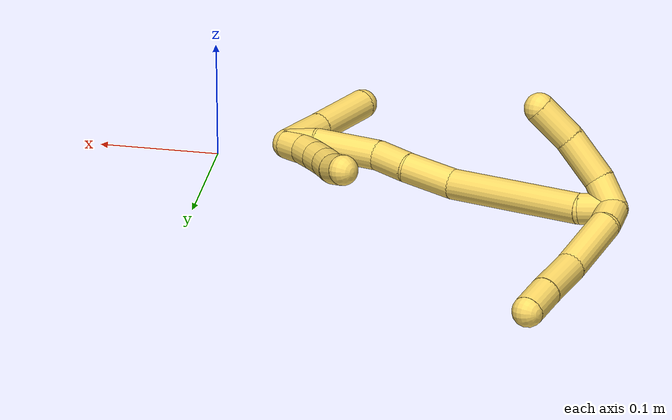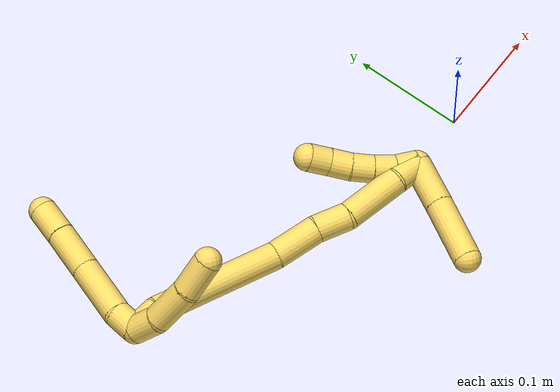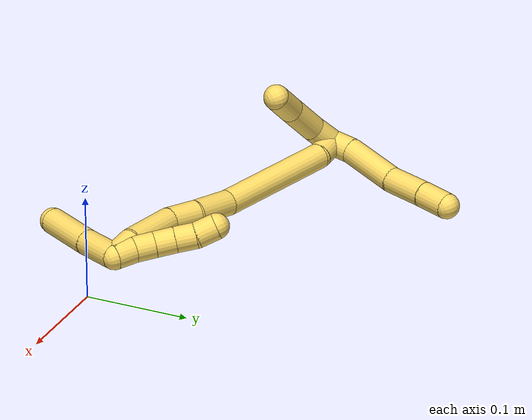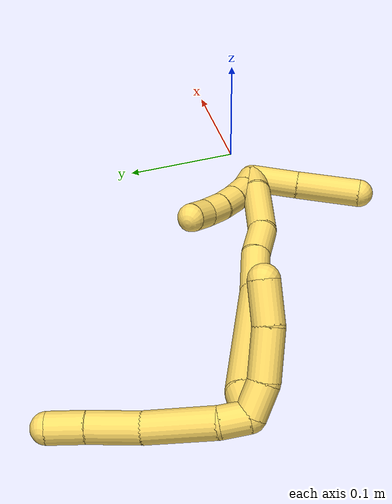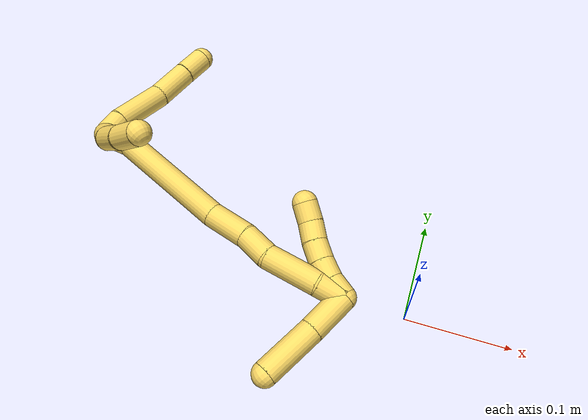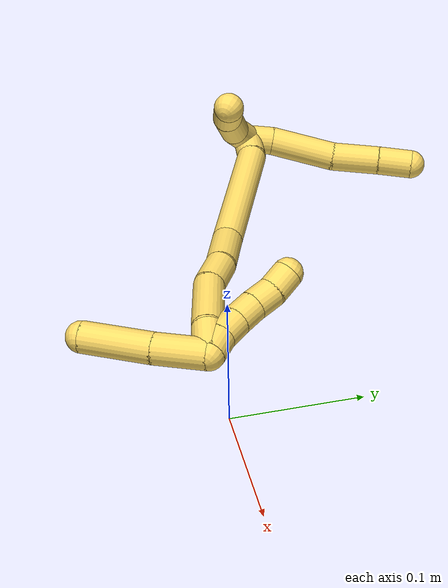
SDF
<sdf version="1.7">
 <world name="default">
  <model name="5">
   <static>0</static>
   <link name="5">
    <collision name="collision-cylinder-e_1_2_8">
     <pose>0.001507 0.010247 0.004462 -1.16008 0.13399 -0.087869</pose>
     <geometry><cylinder><radius>0.0125</radius><length>0.022556</length></cylinder></geometry>
     <surface>
      <friction><ode><mu>1.16</mu><mu2>1.16</mu2><slip1>0</slip1><slip2>0</slip2></ode></friction>
      <contact><ode><kp>1e+06</kp><kd>1</kd><max_vel>0</max_vel><min_depth>0.001</min_depth></ode></contact>
     </surface>
    </collision>
    <visual name="visual-cylinder-e_1_2_8">
     <pose>0.001507 0.010247 0.004462 -1.16008 0.13399 -0.087869</pose>
     <geometry><cylinder><radius>0.0125</radius><length>0.022556</length></cylinder></geometry>
     <material><ambient>1 0.858824 0.4 1</ambient></material>
    </visual>
    <collision name="collision-cylinder-e_2_8_9">
     <pose>0.006708 0.048263 0.013899 -1.39353 0.130227 -0.109017</pose>
     <geometry><cylinder><radius>0.0125</radius><length>0.056903</length></cylinder></geometry>
     <surface>
      <friction><ode><mu>1.16</mu><mu2>1.16</mu2><slip1>0</slip1><slip2>0</slip2></ode></friction>
      <contact><ode><kp>1e+06</kp><kd>1</kd><max_vel>0</max_vel><min_depth>0.001</min_depth></ode></contact>
     </surface>
    </collision>
    <visual name="visual-cylinder-e_2_8_9">
     <pose>0.006708 0.048263 0.013899 -1.39353 0.130227 -0.109017</pose>
     <geometry><cylinder><radius>0.0125</radius><length>0.056903</length></cylinder></geometry>
     <material><ambient>1 0.858824 0.4 1</ambient></material>
    </visual>
    <collision name="collision-cylinder-e_3_9_10">
     <pose>0.016138 0.095145 0.023923 -1.31253 0.282354 -0.21804</pose>
     <geometry><cylinder><radius>0.0125</radius><length>0.041169</length></cylinder></geometry>
     <surface>
      <friction><ode><mu>1.16</mu><mu2>1.16</mu2><slip1>0</slip1><slip2>0</slip2></ode></friction>
      <contact><ode><kp>1e+06</kp><kd>1</kd><max_vel>0</max_vel><min_depth>0.001</min_depth></ode></contact>
     </surface>
    </collision>
    <visual name="visual-cylinder-e_3_9_10">
     <pose>0.016138 0.095145 0.023923 -1.31253 0.282354 -0.21804</pose>
     <geometry><cylinder><radius>0.0125</radius><length>0.041169</length></cylinder></geometry>
     <material><ambient>1 0.858824 0.4 1</ambient></material>
    </visual>
    <collision name="collision-cylinder-e_4_10_6">
     <pose>0.025348 0.128051 0.032632 -1.31142 0.238864 -0.184105</pose>
     <geometry><cylinder><radius>0.0125</radius><length>0.029372</length></cylinder></geometry>
     <surface>
      <friction><ode><mu>1.16</mu><mu2>1.16</mu2><slip1>0</slip1><slip2>0</slip2></ode></friction>
      <contact><ode><kp>1e+06</kp><kd>1</kd><max_vel>0</max_vel><min_depth>0.001</min_depth></ode></contact>
     </surface>
    </collision>
    <visual name="visual-cylinder-e_4_10_6">
     <pose>0.025348 0.128051 0.032632 -1.31142 0.238864 -0.184105</pose>
     <geometry><cylinder><radius>0.0125</radius><length>0.029372</length></cylinder></geometry>
     <material><ambient>1 0.858824 0.4 1</ambient></material>
    </visual>
    <collision name="collision-cylinder-e_1_2_11">
     <pose>0.008784 -0.005915 -0.007787 2.49199 0.731822 1.69964</pose>
     <geometry><cylinder><radius>0.0125</radius><length>0.026289</length></cylinder></geometry>
     <surface>
      <friction><ode><mu>1.16</mu><mu2>1.16</mu2><slip1>0</slip1><slip2>0</slip2></ode></friction>
      <contact><ode><kp>1e+06</kp><kd>1</kd><max_vel>0</max_vel><min_depth>0.001</min_depth></ode></contact>
     </surface>
    </collision>
    <visual name="visual-cylinder-e_1_2_11">
     <pose>0.008784 -0.005915 -0.007787 2.49199 0.731822 1.69964</pose>
     <geometry><cylinder><radius>0.0125</radius><length>0.026289</length></cylinder></geometry>
     <material><ambient>1 0.858824 0.4 1</ambient></material>
    </visual>
    <collision name="collision-cylinder-e_2_11_12">
     <pose>0.033602 -0.015505 -0.026826 2.82587 0.934924 2.53061</pose>
     <geometry><cylinder><radius>0.0125</radius><length>0.039862</length></cylinder></geometry>
     <surface>
      <friction><ode><mu>1.16</mu><mu2>1.16</mu2><slip1>0</slip1><slip2>0</slip2></ode></friction>
      <contact><ode><kp>1e+06</kp><kd>1</kd><max_vel>0</max_vel><min_depth>0.001</min_depth></ode></contact>
     </surface>
    </collision>
    <visual name="visual-cylinder-e_2_11_12">
     <pose>0.033602 -0.015505 -0.026826 2.82587 0.934924 2.53061</pose>
     <geometry><cylinder><radius>0.0125</radius><length>0.039862</length></cylinder></geometry>
     <material><ambient>1 0.858824 0.4 1</ambient></material>
    </visual>
    <collision name="collision-cylinder-e_3_12_5">
     <pose>0.063853 -0.019023 -0.047261 -3.12447 0.997158 -3.11014</pose>
     <geometry><cylinder><radius>0.0125</radius><length>0.033849</length></cylinder></geometry>
     <surface>
      <friction><ode><mu>1.16</mu><mu2>1.16</mu2><slip1>0</slip1><slip2>0</slip2></ode></friction>
      <contact><ode><kp>1e+06</kp><kd>1</kd><max_vel>0</max_vel><min_depth>0.001</min_depth></ode></contact>
     </surface>
    </collision>
    <visual name="visual-cylinder-e_3_12_5">
     <pose>0.063853 -0.019023 -0.047261 -3.12447 0.997158 -3.11014</pose>
     <geometry><cylinder><radius>0.0125</radius><length>0.033849</length></cylinder></geometry>
     <material><ambient>1 0.858824 0.4 1</ambient></material>
    </visual>
    <collision name="collision-cylinder-e_1_2_13">
     <pose>0.002698 0.006018 -0.011508 -2.65977 0.204824 -0.79238</pose>
     <geometry><cylinder><radius>0.0125</radius><length>0.026527</length></cylinder></geometry>
     <surface>
      <friction><ode><mu>1.16</mu><mu2>1.16</mu2><slip1>0</slip1><slip2>0</slip2></ode></friction>
      <contact><ode><kp>1e+06</kp><kd>1</kd><max_vel>0</max_vel><min_depth>0.001</min_depth></ode></contact>
     </surface>
    </collision>
    <visual name="visual-cylinder-e_1_2_13">
     <pose>0.002698 0.006018 -0.011508 -2.65977 0.204824 -0.79238</pose>
     <geometry><cylinder><radius>0.0125</radius><length>0.026527</length></cylinder></geometry>
     <material><ambient>1 0.858824 0.4 1</ambient></material>
    </visual>
    <collision name="collision-cylinder-e_2_13_14">
     <pose>0.013678 0.0212 -0.080988 -2.98481 0.140187 -1.45872</pose>
     <geometry><cylinder><radius>0.0125</radius><length>0.118548</length></cylinder></geometry>
     <surface>
      <friction><ode><mu>1.16</mu><mu2>1.16</mu2><slip1>0</slip1><slip2>0</slip2></ode></friction>
      <contact><ode><kp>1e+06</kp><kd>1</kd><max_vel>0</max_vel><min_depth>0.001</min_depth></ode></contact>
     </surface>
    </collision>
    <visual name="visual-cylinder-e_2_13_14">
     <pose>0.013678 0.0212 -0.080988 -2.98481 0.140187 -1.45872</pose>
     <geometry><cylinder><radius>0.0125</radius><length>0.118548</length></cylinder></geometry>
     <material><ambient>1 0.858824 0.4 1</ambient></material>
    </visual>
    <collision name="collision-cylinder-e_3_14_15">
     <pose>0.02926 0.033427 -0.158799 -2.98844 0.348822 -2.32021</pose>
     <geometry><cylinder><radius>0.0125</radius><length>0.042719</length></cylinder></geometry>
     <surface>
      <friction><ode><mu>1.16</mu><mu2>1.16</mu2><slip1>0</slip1><slip2>0</slip2></ode></friction>
      <contact><ode><kp>1e+06</kp><kd>1</kd><max_vel>0</max_vel><min_depth>0.001</min_depth></ode></contact>
     </surface>
    </collision>
    <visual name="visual-cylinder-e_3_14_15">
     <pose>0.02926 0.033427 -0.158799 -2.98844 0.348822 -2.32021</pose>
     <geometry><cylinder><radius>0.0125</radius><length>0.042719</length></cylinder></geometry>
     <material><ambient>1 0.858824 0.4 1</ambient></material>
    </visual>
    <collision name="collision-cylinder-e_4_15_16">
     <pose>0.040103 0.036549 -0.193562 -3.13755 0.233005 -3.10707</pose>
     <geometry><cylinder><radius>0.0125</radius><length>0.030677</length></cylinder></geometry>
     <surface>
      <friction><ode><mu>1.16</mu><mu2>1.16</mu2><slip1>0</slip1><slip2>0</slip2></ode></friction>
      <contact><ode><kp>1e+06</kp><kd>1</kd><max_vel>0</max_vel><min_depth>0.001</min_depth></ode></contact>
     </surface>
    </collision>
    <visual name="visual-cylinder-e_4_15_16">
     <pose>0.040103 0.036549 -0.193562 -3.13755 0.233005 -3.10707</pose>
     <geometry><cylinder><radius>0.0125</radius><length>0.030677</length></cylinder></geometry>
     <material><ambient>1 0.858824 0.4 1</ambient></material>
    </visual>
    <collision name="collision-cylinder-e_5_16_17">
     <pose>0.051494 0.044282 -0.233619 -2.84531 0.290272 -1.55</pose>
     <geometry><cylinder><radius>0.0125</radius><length>0.054852</length></cylinder></geometry>
     <surface>
      <friction><ode><mu>1.16</mu><mu2>1.16</mu2><slip1>0</slip1><slip2>0</slip2></ode></friction>
      <contact><ode><kp>1e+06</kp><kd>1</kd><max_vel>0</max_vel><min_depth>0.001</min_depth></ode></contact>
     </surface>
    </collision>
    <visual name="visual-cylinder-e_5_16_17">
     <pose>0.051494 0.044282 -0.233619 -2.84531 0.290272 -1.55</pose>
     <geometry><cylinder><radius>0.0125</radius><length>0.054852</length></cylinder></geometry>
     <material><ambient>1 0.858824 0.4 1</ambient></material>
    </visual>
    <collision name="collision-cylinder-e_6_17_1">
     <pose>0.061098 0.057241 -0.270873 -2.73032 0.131897 -0.613282</pose>
     <geometry><cylinder><radius>0.0125</radius><length>0.026677</length></cylinder></geometry>
     <surface>
      <friction><ode><mu>1.16</mu><mu2>1.16</mu2><slip1>0</slip1><slip2>0</slip2></ode></friction>
      <contact><ode><kp>1e+06</kp><kd>1</kd><max_vel>0</max_vel><min_depth>0.001</min_depth></ode></contact>
     </surface>
    </collision>
    <visual name="visual-cylinder-e_6_17_1">
     <pose>0.061098 0.057241 -0.270873 -2.73032 0.131897 -0.613282</pose>
     <geometry><cylinder><radius>0.0125</radius><length>0.026677</length></cylinder></geometry>
     <material><ambient>1 0.858824 0.4 1</ambient></material>
    </visual>
    <collision name="collision-cylinder-e_1_1_18">
     <pose>0.062403 0.063074 -0.273017 -0.054757 -0.04489 0.00123</pose>
     <geometry><cylinder><radius>0.0125</radius><length>0.02</length></cylinder></geometry>
     <surface>
      <friction><ode><mu>1.16</mu><mu2>1.16</mu2><slip1>0</slip1><slip2>0</slip2></ode></friction>
      <contact><ode><kp>1e+06</kp><kd>1</kd><max_vel>0</max_vel><min_depth>0.001</min_depth></ode></contact>
     </surface>
    </collision>
    <visual name="visual-cylinder-e_1_1_18">
     <pose>0.062403 0.063074 -0.273017 -0.054757 -0.04489 0.00123</pose>
     <geometry><cylinder><radius>0.0125</radius><length>0.02</length></cylinder></geometry>
     <material><ambient>1 0.858824 0.4 1</ambient></material>
    </visual>
    <collision name="collision-cylinder-e_2_18_19">
     <pose>0.062389 0.066098 -0.253364 -0.25056 0.043442 -0.005472</pose>
     <geometry><cylinder><radius>0.0125</radius><length>0.02</length></cylinder></geometry>
     <surface>
      <friction><ode><mu>1.16</mu><mu2>1.16</mu2><slip1>0</slip1><slip2>0</slip2></ode></friction>
      <contact><ode><kp>1e+06</kp><kd>1</kd><max_vel>0</max_vel><min_depth>0.001</min_depth></ode></contact>
     </surface>
    </collision>
    <visual name="visual-cylinder-e_2_18_19">
     <pose>0.062389 0.066098 -0.253364 -0.25056 0.043442 -0.005472</pose>
     <geometry><cylinder><radius>0.0125</radius><length>0.02</length></cylinder></geometry>
     <material><ambient>1 0.858824 0.4 1</ambient></material>
    </visual>
    <collision name="collision-cylinder-e_3_19_20">
     <pose>0.064004 0.071684 -0.234254 -0.318444 0.118386 -0.019032</pose>
     <geometry><cylinder><radius>0.0125</radius><length>0.02</length></cylinder></geometry>
     <surface>
      <friction><ode><mu>1.16</mu><mu2>1.16</mu2><slip1>0</slip1><slip2>0</slip2></ode></friction>
      <contact><ode><kp>1e+06</kp><kd>1</kd><max_vel>0</max_vel><min_depth>0.001</min_depth></ode></contact>
     </surface>
    </collision>
    <visual name="visual-cylinder-e_3_19_20">
     <pose>0.064004 0.071684 -0.234254 -0.318444 0.118386 -0.019032</pose>
     <geometry><cylinder><radius>0.0125</radius><length>0.02</length></cylinder></geometry>
     <material><ambient>1 0.858824 0.4 1</ambient></material>
    </visual>
    <collision name="collision-cylinder-e_4_20_21">
     <pose>0.067181 0.0788 -0.215882 -0.421279 0.200926 -0.043099</pose>
     <geometry><cylinder><radius>0.0125</radius><length>0.02</length></cylinder></geometry>
     <surface>
      <friction><ode><mu>1.16</mu><mu2>1.16</mu2><slip1>0</slip1><slip2>0</slip2></ode></friction>
      <contact><ode><kp>1e+06</kp><kd>1</kd><max_vel>0</max_vel><min_depth>0.001</min_depth></ode></contact>
     </surface>
    </collision>
    <visual name="visual-cylinder-e_4_20_21">
     <pose>0.067181 0.0788 -0.215882 -0.421279 0.200926 -0.043099</pose>
     <geometry><cylinder><radius>0.0125</radius><length>0.02</length></cylinder></geometry>
     <material><ambient>1 0.858824 0.4 1</ambient></material>
    </visual>
    <collision name="collision-cylinder-e_5_21_4">
     <pose>0.072397 0.084947 -0.197717 -0.228029 0.32782 -0.037874</pose>
     <geometry><cylinder><radius>0.0125</radius><length>0.02</length></cylinder></geometry>
     <surface>
      <friction><ode><mu>1.16</mu><mu2>1.16</mu2><slip1>0</slip1><slip2>0</slip2></ode></friction>
      <contact><ode><kp>1e+06</kp><kd>1</kd><max_vel>0</max_vel><min_depth>0.001</min_depth></ode></contact>
     </surface>
    </collision>
    <visual name="visual-cylinder-e_5_21_4">
     <pose>0.072397 0.084947 -0.197717 -0.228029 0.32782 -0.037874</pose>
     <geometry><cylinder><radius>0.0125</radius><length>0.02</length></cylinder></geometry>
     <material><ambient>1 0.858824 0.4 1</ambient></material>
    </visual>
    <collision name="collision-cylinder-e_1_1_22">
     <pose>0.054542 0.043098 -0.28599 1.72386 -0.399917 -0.464144</pose>
     <geometry><cylinder><radius>0.0125</radius><length>0.042687</length></cylinder></geometry>
     <surface>
      <friction><ode><mu>1.16</mu><mu2>1.16</mu2><slip1>0</slip1><slip2>0</slip2></ode></friction>
      <contact><ode><kp>1e+06</kp><kd>1</kd><max_vel>0</max_vel><min_depth>0.001</min_depth></ode></contact>
     </surface>
    </collision>
    <visual name="visual-cylinder-e_1_1_22">
     <pose>0.054542 0.043098 -0.28599 1.72386 -0.399917 -0.464144</pose>
     <geometry><cylinder><radius>0.0125</radius><length>0.042687</length></cylinder></geometry>
     <material><ambient>1 0.858824 0.4 1</ambient></material>
    </visual>
    <collision name="collision-cylinder-e_2_22_3">
     <pose>0.036005 -0.002938 -0.291945 1.6815 -0.364931 -0.406633</pose>
     <geometry><cylinder><radius>0.0125</radius><length>0.057313</length></cylinder></geometry>
     <surface>
      <friction><ode><mu>1.16</mu><mu2>1.16</mu2><slip1>0</slip1><slip2>0</slip2></ode></friction>
      <contact><ode><kp>1e+06</kp><kd>1</kd><max_vel>0</max_vel><min_depth>0.001</min_depth></ode></contact>
     </surface>
    </collision>
    <visual name="visual-cylinder-e_2_22_3">
     <pose>0.036005 -0.002938 -0.291945 1.6815 -0.364931 -0.406633</pose>
     <geometry><cylinder><radius>0.0125</radius><length>0.057313</length></cylinder></geometry>
     <material><ambient>1 0.858824 0.4 1</ambient></material>
    </visual>
    <collision name="collision-sphere-3">
     <pose>0.025778 -0.029543 -0.294902 0 -0 0</pose>
     <geometry><sphere><radius>0.0125</radius></sphere></geometry>
     <surface>
      <friction><ode><mu>1.16</mu><mu2>1.16</mu2><slip1>0</slip1><slip2>0</slip2></ode></friction>
      <contact><ode><kp>1e+06</kp><kd>1</kd><max_vel>0</max_vel><min_depth>0.001</min_depth></ode></contact>
     </surface>
    </collision>
    <visual name="visual-sphere-3">
     <pose>0.025778 -0.029543 -0.294902 0 -0 0</pose>
     <geometry><sphere><radius>0.0125</radius></sphere></geometry>
     <material><ambient>1 0.858824 0.4 1</ambient></material>
    </visual>
    <collision name="collision-sphere-22">
     <pose>0.046232 0.023668 -0.288987 0 -0 0</pose>
     <geometry><sphere><radius>0.0125</radius></sphere></geometry>
     <surface>
      <friction><ode><mu>1.16</mu><mu2>1.16</mu2><slip1>0</slip1><slip2>0</slip2></ode></friction>
      <contact><ode><kp>1e+06</kp><kd>1</kd><max_vel>0</max_vel><min_depth>0.001</min_depth></ode></contact>
     </surface>
    </collision>
    <visual name="visual-sphere-22">
     <pose>0.046232 0.023668 -0.288987 0 -0 0</pose>
     <geometry><sphere><radius>0.0125</radius></sphere></geometry>
     <material><ambient>1 0.858824 0.4 1</ambient></material>
    </visual>
    <collision name="collision-sphere-4">
     <pose>0.075616 0.087087 -0.188495 0 -0 0</pose>
     <geometry><sphere><radius>0.0125</radius></sphere></geometry>
     <surface>
      <friction><ode><mu>1.16</mu><mu2>1.16</mu2><slip1>0</slip1><slip2>0</slip2></ode></friction>
      <contact><ode><kp>1e+06</kp><kd>1</kd><max_vel>0</max_vel><min_depth>0.001</min_depth></ode></contact>
     </surface>
    </collision>
    <visual name="visual-sphere-4">
     <pose>0.075616 0.087087 -0.188495 0 -0 0</pose>
     <geometry><sphere><radius>0.0125</radius></sphere></geometry>
     <material><ambient>1 0.858824 0.4 1</ambient></material>
    </visual>
    <collision name="collision-sphere-21">
     <pose>0.069177 0.082807 -0.20694 0 -0 0</pose>
     <geometry><sphere><radius>0.0125</radius></sphere></geometry>
     <surface>
      <friction><ode><mu>1.16</mu><mu2>1.16</mu2><slip1>0</slip1><slip2>0</slip2></ode></friction>
      <contact><ode><kp>1e+06</kp><kd>1</kd><max_vel>0</max_vel><min_depth>0.001</min_depth></ode></contact>
     </surface>
    </collision>
    <visual name="visual-sphere-21">
     <pose>0.069177 0.082807 -0.20694 0 -0 0</pose>
     <geometry><sphere><radius>0.0125</radius></sphere></geometry>
     <material><ambient>1 0.858824 0.4 1</ambient></material>
    </visual>
    <collision name="collision-sphere-20">
     <pose>0.065185 0.074793 -0.224824 0 -0 0</pose>
     <geometry><sphere><radius>0.0125</radius></sphere></geometry>
     <surface>
      <friction><ode><mu>1.16</mu><mu2>1.16</mu2><slip1>0</slip1><slip2>0</slip2></ode></friction>
      <contact><ode><kp>1e+06</kp><kd>1</kd><max_vel>0</max_vel><min_depth>0.001</min_depth></ode></contact>
     </surface>
    </collision>
    <visual name="visual-sphere-20">
     <pose>0.065185 0.074793 -0.224824 0 -0 0</pose>
     <geometry><sphere><radius>0.0125</radius></sphere></geometry>
     <material><ambient>1 0.858824 0.4 1</ambient></material>
    </visual>
    <collision name="collision-sphere-11">
     <pose>0.017567 -0.01183 -0.015574 0 -0 0</pose>
     <geometry><sphere><radius>0.0125</radius></sphere></geometry>
     <surface>
      <friction><ode><mu>1.16</mu><mu2>1.16</mu2><slip1>0</slip1><slip2>0</slip2></ode></friction>
      <contact><ode><kp>1e+06</kp><kd>1</kd><max_vel>0</max_vel><min_depth>0.001</min_depth></ode></contact>
     </surface>
    </collision>
    <visual name="visual-sphere-11">
     <pose>0.017567 -0.01183 -0.015574 0 -0 0</pose>
     <geometry><sphere><radius>0.0125</radius></sphere></geometry>
     <material><ambient>1 0.858824 0.4 1</ambient></material>
    </visual>
    <collision name="collision-sphere-6">
     <pose>0.028822 0.141843 0.036292 0 -0 0</pose>
     <geometry><sphere><radius>0.0125</radius></sphere></geometry>
     <surface>
      <friction><ode><mu>1.16</mu><mu2>1.16</mu2><slip1>0</slip1><slip2>0</slip2></ode></friction>
      <contact><ode><kp>1e+06</kp><kd>1</kd><max_vel>0</max_vel><min_depth>0.001</min_depth></ode></contact>
     </surface>
    </collision>
    <visual name="visual-sphere-6">
     <pose>0.028822 0.141843 0.036292 0 -0 0</pose>
     <geometry><sphere><radius>0.0125</radius></sphere></geometry>
     <material><ambient>1 0.858824 0.4 1</ambient></material>
    </visual>
    <collision name="collision-sphere-10">
     <pose>0.021873 0.114259 0.028972 0 -0 0</pose>
     <geometry><sphere><radius>0.0125</radius></sphere></geometry>
     <surface>
      <friction><ode><mu>1.16</mu><mu2>1.16</mu2><slip1>0</slip1><slip2>0</slip2></ode></friction>
      <contact><ode><kp>1e+06</kp><kd>1</kd><max_vel>0</max_vel><min_depth>0.001</min_depth></ode></contact>
     </surface>
    </collision>
    <visual name="visual-sphere-10">
     <pose>0.021873 0.114259 0.028972 0 -0 0</pose>
     <geometry><sphere><radius>0.0125</radius></sphere></geometry>
     <material><ambient>1 0.858824 0.4 1</ambient></material>
    </visual>
    <collision name="collision-sphere-9">
     <pose>0.010403 0.076031 0.018874 0 -0 0</pose>
     <geometry><sphere><radius>0.0125</radius></sphere></geometry>
     <surface>
      <friction><ode><mu>1.16</mu><mu2>1.16</mu2><slip1>0</slip1><slip2>0</slip2></ode></friction>
      <contact><ode><kp>1e+06</kp><kd>1</kd><max_vel>0</max_vel><min_depth>0.001</min_depth></ode></contact>
     </surface>
    </collision>
    <visual name="visual-sphere-9">
     <pose>0.010403 0.076031 0.018874 0 -0 0</pose>
     <geometry><sphere><radius>0.0125</radius></sphere></geometry>
     <material><ambient>1 0.858824 0.4 1</ambient></material>
    </visual>
    <collision name="collision-sphere-2">
     <geometry><sphere><radius>0.0125</radius></sphere></geometry>
     <surface>
      <friction><ode><mu>1.16</mu><mu2>1.16</mu2><slip1>0</slip1><slip2>0</slip2></ode></friction>
      <contact><ode><kp>1e+06</kp><kd>1</kd><max_vel>0</max_vel><min_depth>0.001</min_depth></ode></contact>
     </surface>
    </collision>
    <visual name="visual-sphere-2">
     <geometry><sphere><radius>0.0125</radius></sphere></geometry>
     <material><ambient>1 0.858824 0.4 1</ambient></material>
    </visual>
    <collision name="collision-sphere-19">
     <pose>0.062823 0.068575 -0.243685 0 -0 0</pose>
     <geometry><sphere><radius>0.0125</radius></sphere></geometry>
     <surface>
      <friction><ode><mu>1.16</mu><mu2>1.16</mu2><slip1>0</slip1><slip2>0</slip2></ode></friction>
      <contact><ode><kp>1e+06</kp><kd>1</kd><max_vel>0</max_vel><min_depth>0.001</min_depth></ode></contact>
     </surface>
    </collision>
    <visual name="visual-sphere-19">
     <pose>0.062823 0.068575 -0.243685 0 -0 0</pose>
     <geometry><sphere><radius>0.0125</radius></sphere></geometry>
     <material><ambient>1 0.858824 0.4 1</ambient></material>
    </visual>
    <collision name="collision-sphere-8">
     <pose>0.003013 0.020494 0.008925 0 -0 0</pose>
     <geometry><sphere><radius>0.0125</radius></sphere></geometry>
     <surface>
      <friction><ode><mu>1.16</mu><mu2>1.16</mu2><slip1>0</slip1><slip2>0</slip2></ode></friction>
      <contact><ode><kp>1e+06</kp><kd>1</kd><max_vel>0</max_vel><min_depth>0.001</min_depth></ode></contact>
     </surface>
    </collision>
    <visual name="visual-sphere-8">
     <pose>0.003013 0.020494 0.008925 0 -0 0</pose>
     <geometry><sphere><radius>0.0125</radius></sphere></geometry>
     <material><ambient>1 0.858824 0.4 1</ambient></material>
    </visual>
    <collision name="collision-sphere-12">
     <pose>0.049638 -0.019181 -0.038077 0 -0 0</pose>
     <geometry><sphere><radius>0.0125</radius></sphere></geometry>
     <surface>
      <friction><ode><mu>1.16</mu><mu2>1.16</mu2><slip1>0</slip1><slip2>0</slip2></ode></friction>
      <contact><ode><kp>1e+06</kp><kd>1</kd><max_vel>0</max_vel><min_depth>0.001</min_depth></ode></contact>
     </surface>
    </collision>
    <visual name="visual-sphere-12">
     <pose>0.049638 -0.019181 -0.038077 0 -0 0</pose>
     <geometry><sphere><radius>0.0125</radius></sphere></geometry>
     <material><ambient>1 0.858824 0.4 1</ambient></material>
    </visual>
    <collision name="collision-sphere-5">
     <pose>0.078069 -0.018866 -0.056444 0 -0 0</pose>
     <geometry><sphere><radius>0.0125</radius></sphere></geometry>
     <surface>
      <friction><ode><mu>1.16</mu><mu2>1.16</mu2><slip1>0</slip1><slip2>0</slip2></ode></friction>
      <contact><ode><kp>1e+06</kp><kd>1</kd><max_vel>0</max_vel><min_depth>0.001</min_depth></ode></contact>
     </surface>
    </collision>
    <visual name="visual-sphere-5">
     <pose>0.078069 -0.018866 -0.056444 0 -0 0</pose>
     <geometry><sphere><radius>0.0125</radius></sphere></geometry>
     <material><ambient>1 0.858824 0.4 1</ambient></material>
    </visual>
    <collision name="collision-sphere-13">
     <pose>0.005395 0.012036 -0.023016 0 -0 0</pose>
     <geometry><sphere><radius>0.0125</radius></sphere></geometry>
     <surface>
      <friction><ode><mu>1.16</mu><mu2>1.16</mu2><slip1>0</slip1><slip2>0</slip2></ode></friction>
      <contact><ode><kp>1e+06</kp><kd>1</kd><max_vel>0</max_vel><min_depth>0.001</min_depth></ode></contact>
     </surface>
    </collision>
    <visual name="visual-sphere-13">
     <pose>0.005395 0.012036 -0.023016 0 -0 0</pose>
     <geometry><sphere><radius>0.0125</radius></sphere></geometry>
     <material><ambient>1 0.858824 0.4 1</ambient></material>
    </visual>
    <collision name="collision-sphere-14">
     <pose>0.02196 0.030364 -0.138961 0 -0 0</pose>
     <geometry><sphere><radius>0.0125</radius></sphere></geometry>
     <surface>
      <friction><ode><mu>1.16</mu><mu2>1.16</mu2><slip1>0</slip1><slip2>0</slip2></ode></friction>
      <contact><ode><kp>1e+06</kp><kd>1</kd><max_vel>0</max_vel><min_depth>0.001</min_depth></ode></contact>
     </surface>
    </collision>
    <visual name="visual-sphere-14">
     <pose>0.02196 0.030364 -0.138961 0 -0 0</pose>
     <geometry><sphere><radius>0.0125</radius></sphere></geometry>
     <material><ambient>1 0.858824 0.4 1</ambient></material>
    </visual>
    <collision name="collision-sphere-15">
     <pose>0.036561 0.036489 -0.178638 0 -0 0</pose>
     <geometry><sphere><radius>0.0125</radius></sphere></geometry>
     <surface>
      <friction><ode><mu>1.16</mu><mu2>1.16</mu2><slip1>0</slip1><slip2>0</slip2></ode></friction>
      <contact><ode><kp>1e+06</kp><kd>1</kd><max_vel>0</max_vel><min_depth>0.001</min_depth></ode></contact>
     </surface>
    </collision>
    <visual name="visual-sphere-15">
     <pose>0.036561 0.036489 -0.178638 0 -0 0</pose>
     <geometry><sphere><radius>0.0125</radius></sphere></geometry>
     <material><ambient>1 0.858824 0.4 1</ambient></material>
    </visual>
    <collision name="collision-sphere-16">
     <pose>0.043644 0.03661 -0.208485 0 -0 0</pose>
     <geometry><sphere><radius>0.0125</radius></sphere></geometry>
     <surface>
      <friction><ode><mu>1.16</mu><mu2>1.16</mu2><slip1>0</slip1><slip2>0</slip2></ode></friction>
      <contact><ode><kp>1e+06</kp><kd>1</kd><max_vel>0</max_vel><min_depth>0.001</min_depth></ode></contact>
     </surface>
    </collision>
    <visual name="visual-sphere-16">
     <pose>0.043644 0.03661 -0.208485 0 -0 0</pose>
     <geometry><sphere><radius>0.0125</radius></sphere></geometry>
     <material><ambient>1 0.858824 0.4 1</ambient></material>
    </visual>
    <collision name="collision-sphere-17">
     <pose>0.059344 0.051955 -0.258753 0 -0 0</pose>
     <geometry><sphere><radius>0.0125</radius></sphere></geometry>
     <surface>
      <friction><ode><mu>1.16</mu><mu2>1.16</mu2><slip1>0</slip1><slip2>0</slip2></ode></friction>
      <contact><ode><kp>1e+06</kp><kd>1</kd><max_vel>0</max_vel><min_depth>0.001</min_depth></ode></contact>
     </surface>
    </collision>
    <visual name="visual-sphere-17">
     <pose>0.059344 0.051955 -0.258753 0 -0 0</pose>
     <geometry><sphere><radius>0.0125</radius></sphere></geometry>
     <material><ambient>1 0.858824 0.4 1</ambient></material>
    </visual>
    <collision name="collision-sphere-1">
     <pose>0.062852 0.062527 -0.282992 0 -0 0</pose>
     <geometry><sphere><radius>0.0125</radius></sphere></geometry>
     <surface>
      <friction><ode><mu>1.16</mu><mu2>1.16</mu2><slip1>0</slip1><slip2>0</slip2></ode></friction>
      <contact><ode><kp>1e+06</kp><kd>1</kd><max_vel>0</max_vel><min_depth>0.001</min_depth></ode></contact>
     </surface>
    </collision>
    <visual name="visual-sphere-1">
     <pose>0.062852 0.062527 -0.282992 0 -0 0</pose>
     <geometry><sphere><radius>0.0125</radius></sphere></geometry>
     <material><ambient>1 0.858824 0.4 1</ambient></material>
    </visual>
    <collision name="collision-sphere-18">
     <pose>0.061955 0.06362 -0.263042 0 -0 0</pose>
     <geometry><sphere><radius>0.0125</radius></sphere></geometry>
     <surface>
      <friction><ode><mu>1.16</mu><mu2>1.16</mu2><slip1>0</slip1><slip2>0</slip2></ode></friction>
      <contact><ode><kp>1e+06</kp><kd>1</kd><max_vel>0</max_vel><min_depth>0.001</min_depth></ode></contact>
     </surface>
    </collision>
    <visual name="visual-sphere-18">
     <pose>0.061955 0.06362 -0.263042 0 -0 0</pose>
     <geometry><sphere><radius>0.0125</radius></sphere></geometry>
     <material><ambient>1 0.858824 0.4 1</ambient></material>
    </visual>
    <inertial>
     <pose>0.033524 0.036506 -0.126843 0 -0 0</pose>
     <mass>0.75</mass>
     <inertia>
      <ixx>-0.0001</ixx>
      <ixy>0</ixy>
      <ixz>0</ixz>
      <iyy>-0.000145</iyy>
      <iyz>0</iyz>
      <izz>-8.8e-05</izz>
     </inertia>
    </inertial>
   </link>
   <pose>-0.338544 0.095207 0.030207 -1.11166 -1.1531 0.535487</pose>
  </model>
 </world>
</sdf>
